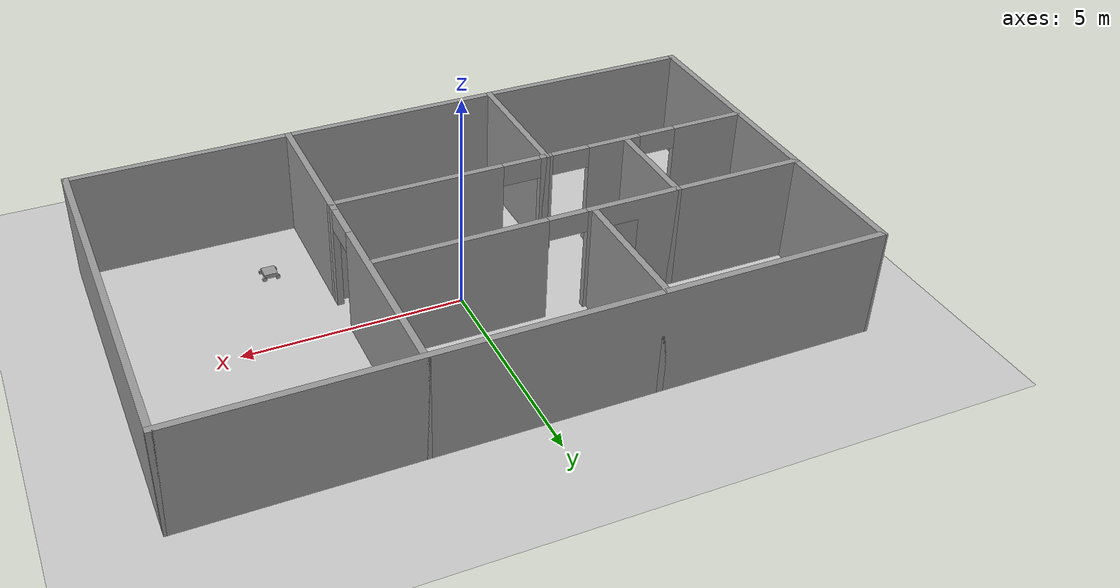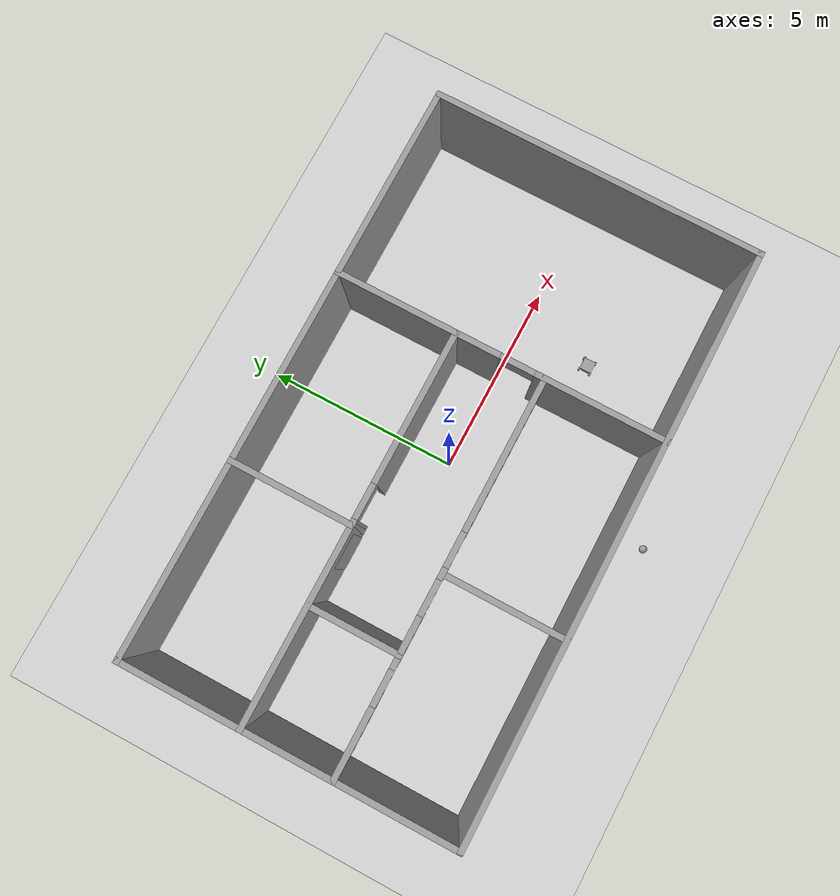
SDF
<sdf version="1.7">
 <world name="default">
  <plugin name="hello" filename="libhello.so"/>
  <light name="sun" type="directional">
   <pose>0 0 10 0 -0 0</pose>
   <diffuse>0.8 0.8 0.8 1</diffuse>
   <specular>0.2 0.2 0.2 1</specular>
   <attenuation>
    <range>1000</range>
    <constant>0.9</constant>
    <linear>0.01</linear>
    <quadratic>0.001</quadratic>
   </attenuation>
   <direction>-0.5 0.1 -0.9</direction>
   <spot><inner_angle>0</inner_angle><outer_angle>0</outer_angle><falloff>0</falloff></spot>
  </light>
  <model name="ground_plane">
   <static>1</static>
   <link name="link">
    <collision name="collision">
     <geometry><plane><normal>0 0 1</normal><size>100 100</size></plane></geometry>
     <surface><friction><ode><mu>100</mu><mu2>50</mu2></ode></friction></surface>
    </collision>
    <visual name="visual">
     <cast_shadows>0</cast_shadows>
     <geometry><plane><normal>0 0 1</normal><size>100 100</size></plane></geometry>
     <material>
      <script><uri>file://media/materials/scripts/gazebo.material</uri><name>Gazebo/Grey</name></script>
     </material>
    </visual>
   </link>
  </model>
  <gravity>0 0 -9.8</gravity>
  <magnetic_field>6e-06 2.3e-05 -4.2e-05</magnetic_field>
  <atmosphere type="adiabatic"/>
  <physics name="default_physics" default="0" type="ode">
   <max_step_size>0.001</max_step_size>
   <real_time_factor>1</real_time_factor>
   <real_time_update_rate>1000</real_time_update_rate>
  </physics>
  <scene><ambient>0.4 0.4 0.4 1</ambient><background>0.7 0.7 0.7 1</background><shadows>1</shadows></scene>
  <spherical_coordinates>
   <surface_model>EARTH_WGS84</surface_model>
   <latitude_deg>0</latitude_deg>
   <longitude_deg>0</longitude_deg>
   <elevation>0</elevation>
   <heading_deg>0</heading_deg>
  </spherical_coordinates>
  <model name="myworld">
   <link name="Door_0">
    <collision name="Door_0_Collision">
     <geometry><box><size>0.9 0.17 2</size></box></geometry>
     <pose>0 0 1 0 -0 0</pose>
    </collision>
    <visual name="Door_0_Visual">
     <pose>0 0 1 0 -0 0</pose>
     <geometry><box><size>0.9 0.17 2</size></box></geometry>
     <material>
      <script><uri>file://media/materials/scripts/gazebo.material</uri><name>Gazebo/Grey</name></script>
     </material>
    </visual>
    <pose>-3.1 1.15 0 0 -0 0</pose>
   </link>
   <link name="Wall_0">
    <collision name="Wall_0_Collision">
     <geometry><box><size>15.15 0.15 2.5</size></box></geometry>
     <pose>0 0 1.25 0 -0 0</pose>
    </collision>
    <visual name="Wall_0_Visual">
     <pose>0 0 1.25 0 -0 0</pose>
     <geometry><box><size>15.15 0.15 2.5</size></box></geometry>
     <material>
      <script><uri>file://media/materials/scripts/gazebo.material</uri><name>Gazebo/Grey</name></script>
      <ambient>1 1 1 1</ambient>
     </material>
     <meta><layer>0</layer></meta>
    </visual>
    <pose>0 4.25 0 0 -0 0</pose>
   </link>
   <link name="Wall_12">
    <pose>-2.5 -1.15 0 0 -0 0</pose>
    <visual name="Wall_12_Visual_0">
     <pose>-4.1625 0 1.25 0 -0 0</pose>
     <geometry><box><size>1.825 0.15 2.5</size></box></geometry>
     <material>
      <script><uri>file://media/materials/scripts/gazebo.material</uri><name>Gazebo/Grey</name></script>
      <ambient>1 1 1 1</ambient>
     </material>
     <meta><layer>0</layer></meta>
    </visual>
    <collision name="Wall_12_Collision_0">
     <geometry><box><size>1.825 0.15 2.5</size></box></geometry>
     <pose>-4.1625 0 1.25 0 -0 0</pose>
    </collision>
    <visual name="Wall_12_Visual_1">
     <pose>-1.7 0 1.25 0 -0 0</pose>
     <geometry><box><size>1.3 0.15 2.5</size></box></geometry>
     <material>
      <script><uri>file://media/materials/scripts/gazebo.material</uri><name>Gazebo/Grey</name></script>
      <ambient>1 1 1 1</ambient>
     </material>
     <meta><layer>0</layer></meta>
    </visual>
    <collision name="Wall_12_Collision_1">
     <geometry><box><size>1.3 0.15 2.5</size></box></geometry>
     <pose>-1.7 0 1.25 0 -0 0</pose>
    </collision>
    <visual name="Wall_12_Visual_2">
     <pose>0 0 1.25 0 -0 0</pose>
     <geometry><box><size>0.3 0.15 2.5</size></box></geometry>
     <material>
      <script><uri>file://media/materials/scripts/gazebo.material</uri><name>Gazebo/Grey</name></script>
      <ambient>1 1 1 1</ambient>
     </material>
     <meta><layer>0</layer></meta>
    </visual>
    <collision name="Wall_12_Collision_2">
     <geometry><box><size>0.3 0.15 2.5</size></box></geometry>
     <pose>0 0 1.25 0 -0 0</pose>
    </collision>
    <visual name="Wall_12_Visual_3">
     <pose>3.0625 0 1.25 0 -0 0</pose>
     <geometry><box><size>4.025 0.15 2.5</size></box></geometry>
     <material>
      <script><uri>file://media/materials/scripts/gazebo.material</uri><name>Gazebo/Grey</name></script>
      <ambient>1 1 1 1</ambient>
     </material>
     <meta><layer>0</layer></meta>
    </visual>
    <collision name="Wall_12_Collision_3">
     <geometry><box><size>4.025 0.15 2.5</size></box></geometry>
     <pose>3.0625 0 1.25 0 -0 0</pose>
    </collision>
    <visual name="Wall_12_Visual_4">
     <pose>-2.8 0 2.25 0 -0 0</pose>
     <geometry><box><size>0.9 0.15 0.5</size></box></geometry>
     <material>
      <script><uri>file://media/materials/scripts/gazebo.material</uri><name>Gazebo/Grey</name></script>
      <ambient>1 1 1 1</ambient>
     </material>
     <meta><layer>0</layer></meta>
    </visual>
    <collision name="Wall_12_Collision_4">
     <geometry><box><size>0.9 0.15 0.5</size></box></geometry>
     <pose>-2.8 0 2.25 0 -0 0</pose>
    </collision>
    <visual name="Wall_12_Visual_5">
     <pose>-0.6 0 2.25 0 -0 0</pose>
     <geometry><box><size>0.9 0.15 0.5</size></box></geometry>
     <material>
      <script><uri>file://media/materials/scripts/gazebo.material</uri><name>Gazebo/Grey</name></script>
      <ambient>1 1 1 1</ambient>
     </material>
     <meta><layer>0</layer></meta>
    </visual>
    <collision name="Wall_12_Collision_5">
     <geometry><box><size>0.9 0.15 0.5</size></box></geometry>
     <pose>-0.6 0 2.25 0 -0 0</pose>
    </collision>
    <visual name="Wall_12_Visual_6">
     <pose>0.6 0 2.25 0 -0 0</pose>
     <geometry><box><size>0.9 0.15 0.5</size></box></geometry>
     <material>
      <script><uri>file://media/materials/scripts/gazebo.material</uri><name>Gazebo/Grey</name></script>
      <ambient>1 1 1 1</ambient>
     </material>
     <meta><layer>0</layer></meta>
    </visual>
    <collision name="Wall_12_Collision_6">
     <geometry><box><size>0.9 0.15 0.5</size></box></geometry>
     <pose>0.6 0 2.25 0 -0 0</pose>
    </collision>
   </link>
   <link name="Wall_17">
    <pose>2.5 0 0 0 0 -1.5708</pose>
    <visual name="Wall_17_Visual_0">
     <pose>-2.1631 0 1.25 0 -0 0</pose>
     <geometry><box><size>4.3238 0.15 2.5</size></box></geometry>
     <material>
      <script><uri>file://media/materials/scripts/gazebo.material</uri><name>Gazebo/Grey</name></script>
      <ambient>1 1 1 1</ambient>
     </material>
     <meta><layer>0</layer></meta>
    </visual>
    <collision name="Wall_17_Collision_0">
     <geometry><box><size>4.3238 0.15 2.5</size></box></geometry>
     <pose>-2.1631 0 1.25 0 -0 0</pose>
    </collision>
    <visual name="Wall_17_Visual_1">
     <pose>2.6119 0 1.25 0 -0 0</pose>
     <geometry><box><size>3.4262 0.15 2.5</size></box></geometry>
     <material>
      <script><uri>file://media/materials/scripts/gazebo.material</uri><name>Gazebo/Grey</name></script>
      <ambient>1 1 1 1</ambient>
     </material>
     <meta><layer>0</layer></meta>
    </visual>
    <collision name="Wall_17_Collision_1">
     <geometry><box><size>3.4262 0.15 2.5</size></box></geometry>
     <pose>2.6119 0 1.25 0 -0 0</pose>
    </collision>
    <visual name="Wall_17_Visual_2">
     <pose>0.448796 0 2.25 0 -0 0</pose>
     <geometry><box><size>0.9 0.15 0.5</size></box></geometry>
     <material>
      <script><uri>file://media/materials/scripts/gazebo.material</uri><name>Gazebo/Grey</name></script>
      <ambient>1 1 1 1</ambient>
     </material>
     <meta><layer>0</layer></meta>
    </visual>
    <collision name="Wall_17_Collision_2">
     <geometry><box><size>0.9 0.15 0.5</size></box></geometry>
     <pose>0.448796 0 2.25 0 -0 0</pose>
    </collision>
   </link>
   <link name="Wall_19">
    <collision name="Wall_19_Collision">
     <geometry><box><size>3.25 0.15 2.5</size></box></geometry>
     <pose>0 0 1.25 0 -0 0</pose>
    </collision>
    <visual name="Wall_19_Visual">
     <pose>0 0 1.25 0 -0 0</pose>
     <geometry><box><size>3.25 0.15 2.5</size></box></geometry>
     <material>
      <script><uri>file://media/materials/scripts/gazebo.material</uri><name>Gazebo/Grey</name></script>
      <ambient>1 1 1 1</ambient>
     </material>
     <meta><layer>0</layer></meta>
    </visual>
    <pose>-2.5 -2.7 0 0 0 -1.5708</pose>
   </link>
   <link name="Wall_2">
    <collision name="Wall_2_Collision">
     <geometry><box><size>8.65 0.15 2.5</size></box></geometry>
     <pose>0 0 1.25 0 -0 0</pose>
    </collision>
    <visual name="Wall_2_Visual">
     <pose>0 0 1.25 0 -0 0</pose>
     <geometry><box><size>8.65 0.15 2.5</size></box></geometry>
     <material>
      <script><uri>file://media/materials/scripts/gazebo.material</uri><name>Gazebo/Grey</name></script>
      <ambient>1 1 1 1</ambient>
     </material>
     <meta><layer>0</layer></meta>
    </visual>
    <pose>-7.5 0 0 0 0 -1.5708</pose>
   </link>
   <link name="Wall_21">
    <collision name="Wall_21_Collision">
     <geometry><box><size>2.45 0.15 2.5</size></box></geometry>
     <pose>0 0 1.25 0 -0 0</pose>
    </collision>
    <visual name="Wall_21_Visual">
     <pose>0 0 1.25 0 -0 0</pose>
     <geometry><box><size>2.45 0.15 2.5</size></box></geometry>
     <material>
      <script><uri>file://media/materials/scripts/gazebo.material</uri><name>Gazebo/Grey</name></script>
      <ambient>1 1 1 1</ambient>
     </material>
     <meta><layer>0</layer></meta>
    </visual>
    <pose>-4.5 0 0 0 0 -1.5708</pose>
   </link>
   <link name="Wall_3">
    <collision name="Wall_3_Collision">
     <geometry><box><size>15.15 0.15 2.5</size></box></geometry>
     <pose>0 0 1.25 0 -0 0</pose>
    </collision>
    <visual name="Wall_3_Visual">
     <pose>0 0 1.25 0 -0 0</pose>
     <geometry><box><size>15.15 0.15 2.5</size></box></geometry>
     <material>
      <script><uri>file://media/materials/scripts/gazebo.material</uri><name>Gazebo/Grey</name></script>
      <ambient>1 1 1 1</ambient>
     </material>
     <meta><layer>0</layer></meta>
    </visual>
    <pose>0 -4.25 0 0 -0 0</pose>
   </link>
   <link name="Wall_4">
    <collision name="Wall_4_Collision">
     <geometry><box><size>8.65 0.15 2.5</size></box></geometry>
     <pose>0 0 1.25 0 -0 0</pose>
    </collision>
    <visual name="Wall_4_Visual">
     <pose>0 0 1.25 0 -0 0</pose>
     <geometry><box><size>8.65 0.15 2.5</size></box></geometry>
     <material>
      <script><uri>file://media/materials/scripts/gazebo.material</uri><name>Gazebo/Grey</name></script>
      <ambient>1 1 1 1</ambient>
     </material>
     <meta><layer>0</layer></meta>
    </visual>
    <pose>7.5 0 0 0 -0 1.5708</pose>
   </link>
   <link name="Wall_6">
    <pose>-2.5 1.15 0 0 -0 0</pose>
    <visual name="Wall_6_Visual_0">
     <pose>-2.46039 0 1.25 0 -0 0</pose>
     <geometry><box><size>5.22922 0.15 2.5</size></box></geometry>
     <material>
      <script><uri>file://media/materials/scripts/gazebo.material</uri><name>Gazebo/Grey</name></script>
      <ambient>1 1 1 1</ambient>
     </material>
     <meta><layer>0</layer></meta>
    </visual>
    <collision name="Wall_6_Collision_0">
     <geometry><box><size>5.22922 0.15 2.5</size></box></geometry>
     <pose>-2.46039 0 1.25 0 -0 0</pose>
    </collision>
    <visual name="Wall_6_Visual_1">
     <pose>3.06461 0 1.25 0 -0 0</pose>
     <geometry><box><size>4.02078 0.15 2.5</size></box></geometry>
     <material>
      <script><uri>file://media/materials/scripts/gazebo.material</uri><name>Gazebo/Grey</name></script>
      <ambient>1 1 1 1</ambient>
     </material>
     <meta><layer>0</layer></meta>
    </visual>
    <collision name="Wall_6_Collision_1">
     <geometry><box><size>4.02078 0.15 2.5</size></box></geometry>
     <pose>3.06461 0 1.25 0 -0 0</pose>
    </collision>
    <visual name="Wall_6_Visual_2">
     <pose>0.604225 0 2.25 0 -0 0</pose>
     <geometry><box><size>0.9 0.15 0.5</size></box></geometry>
     <material>
      <script><uri>file://media/materials/scripts/gazebo.material</uri><name>Gazebo/Grey</name></script>
      <ambient>1 1 1 1</ambient>
     </material>
     <meta><layer>0</layer></meta>
    </visual>
    <collision name="Wall_6_Collision_2">
     <geometry><box><size>0.9 0.15 0.5</size></box></geometry>
     <pose>0.604225 0 2.25 0 -0 0</pose>
    </collision>
   </link>
   <link name="Wall_9">
    <collision name="Wall_9_Collision">
     <geometry><box><size>3.25 0.15 2.5</size></box></geometry>
     <pose>0 0 1.25 0 -0 0</pose>
    </collision>
    <visual name="Wall_9_Visual">
     <pose>0 0 1.25 0 -0 0</pose>
     <geometry><box><size>3.25 0.15 2.5</size></box></geometry>
     <material>
      <script><uri>file://media/materials/scripts/gazebo.material</uri><name>Gazebo/Grey</name></script>
      <ambient>1 1 1 1</ambient>
     </material>
     <meta><layer>0</layer></meta>
    </visual>
    <pose>-2.5 2.7 0 0 0 -1.5708</pose>
   </link>
   <static>1</static>
  </model>
  <model name="myrobot_0">
   <link name="link_0">
    <pose>0 0 0.04 0 -0 0</pose>
    <inertial>
     <mass>1</mass>
     <inertia>
      <ixx>0.166667</ixx>
      <ixy>0</ixy>
      <ixz>0</ixz>
      <iyy>0.166667</iyy>
      <iyz>0</iyz>
      <izz>0.166667</izz>
     </inertia>
    </inertial>
    <visual name="visual">
     <geometry><box><size>0.3 0.3 0.1</size></box></geometry>
     <material>
      <lighting>1</lighting>
      <script><uri>file://media/materials/scripts/gazebo.material</uri><name>Gazebo/Grey</name></script>
      <ambient>0.3 0.3 0.3 1</ambient>
      <diffuse>0.7 0.7 0.7 1</diffuse>
      <specular>0.01 0.01 0.01 1</specular>
      <emissive>0 0 0 1</emissive>
      <shader type="vertex"><normal_map>__default__</normal_map></shader>
     </material>
    </visual>
    <collision name="collision">
     <geometry><box><size>1 1 1</size></box></geometry>
     <surface>
      <friction>
       <ode><mu>1</mu><mu2>1</mu2><fdir1>0 0 0</fdir1><slip1>0</slip1><slip2>0</slip2></ode>
       <torsional>
        <coefficient>1</coefficient>
        <patch_radius>0</patch_radius>
        <surface_radius>0</surface_radius>
        <use_patch_radius>1</use_patch_radius>
        <ode><slip>0</slip></ode>
       </torsional>
      </friction>
      <bounce><restitution_coefficient>0</restitution_coefficient><threshold>1e+06</threshold></bounce>
      <contact>
       <collide_without_contact>0</collide_without_contact>
       <collide_without_contact_bitmask>1</collide_without_contact_bitmask>
       <collide_bitmask>1</collide_bitmask>
       <ode>
        <soft_cfm>0</soft_cfm>
        <soft_erp>0.2</soft_erp>
        <kp>1e+13</kp>
        <kd>1</kd>
        <max_vel>0.01</max_vel>
        <min_depth>0</min_depth>
       </ode>
       <bullet>
        <split_impulse>1</split_impulse>
        <split_impulse_penetration_threshold>-0.01</split_impulse_penetration_threshold>
        <soft_cfm>0</soft_cfm>
        <soft_erp>0.2</soft_erp>
        <kp>1e+13</kp>
        <kd>1</kd>
       </bullet>
      </contact>
     </surface>
    </collision>
   </link>
   <link name="link_1">
    <pose>0.15 -0.15 -0.01 0 -0 0</pose>
    <inertial>
     <mass>1</mass>
     <inertia><ixx>0.145833</ixx><ixy>0</ixy><ixz>0</ixz><iyy>0.145833</iyy><iyz>0</iyz><izz>0.125</izz></inertia>
    </inertial>
    <visual name="visual">
     <pose>0 0 0 1.5708 -0 0</pose>
     <geometry><cylinder><radius>0.05</radius><length>0.05</length></cylinder></geometry>
     <material>
      <lighting>1</lighting>
      <script><uri>file://media/materials/scripts/gazebo.material</uri><name>Gazebo/Grey</name></script>
      <ambient>0.3 0.3 0.3 1</ambient>
      <diffuse>0.7 0.7 0.7 1</diffuse>
      <specular>0.01 0.01 0.01 1</specular>
      <emissive>0 0 0 1</emissive>
      <shader type="vertex"><normal_map>__default__</normal_map></shader>
     </material>
    </visual>
    <collision name="collision">
     <geometry><cylinder><radius>0.5</radius><length>1</length></cylinder></geometry>
     <surface>
      <friction>
       <ode><mu>1</mu><mu2>1</mu2><fdir1>0 0 0</fdir1><slip1>0</slip1><slip2>0</slip2></ode>
       <torsional>
        <coefficient>1</coefficient>
        <patch_radius>0</patch_radius>
        <surface_radius>0</surface_radius>
        <use_patch_radius>1</use_patch_radius>
        <ode><slip>0</slip></ode>
       </torsional>
      </friction>
      <bounce><restitution_coefficient>0</restitution_coefficient><threshold>1e+06</threshold></bounce>
      <contact>
       <collide_without_contact>0</collide_without_contact>
       <collide_without_contact_bitmask>1</collide_without_contact_bitmask>
       <collide_bitmask>1</collide_bitmask>
       <ode>
        <soft_cfm>0</soft_cfm>
        <soft_erp>0.2</soft_erp>
        <kp>1e+13</kp>
        <kd>1</kd>
        <max_vel>0.01</max_vel>
        <min_depth>0</min_depth>
       </ode>
       <bullet>
        <split_impulse>1</split_impulse>
        <split_impulse_penetration_threshold>-0.01</split_impulse_penetration_threshold>
        <soft_cfm>0</soft_cfm>
        <soft_erp>0.2</soft_erp>
        <kp>1e+13</kp>
        <kd>1</kd>
       </bullet>
      </contact>
     </surface>
    </collision>
   </link>
   <link name="link_1_clone">
    <pose>0.15 0.15 -0.01 0 -0 0</pose>
    <inertial>
     <mass>1</mass>
     <inertia><ixx>0.145833</ixx><ixy>0</ixy><ixz>0</ixz><iyy>0.145833</iyy><iyz>0</iyz><izz>0.125</izz></inertia>
    </inertial>
    <visual name="visual">
     <pose>0 0 0 1.5708 -0 0</pose>
     <geometry><cylinder><radius>0.05</radius><length>0.05</length></cylinder></geometry>
     <material>
      <lighting>1</lighting>
      <script><uri>file://media/materials/scripts/gazebo.material</uri><name>Gazebo/Grey</name></script>
      <ambient>0.3 0.3 0.3 1</ambient>
      <diffuse>0.7 0.7 0.7 1</diffuse>
      <specular>0.01 0.01 0.01 1</specular>
      <emissive>0 0 0 1</emissive>
      <shader type="vertex"><normal_map>__default__</normal_map></shader>
     </material>
    </visual>
    <collision name="collision">
     <geometry><cylinder><radius>0.5</radius><length>1</length></cylinder></geometry>
     <surface>
      <friction>
       <ode><mu>1</mu><mu2>1</mu2><fdir1>0 0 0</fdir1><slip1>0</slip1><slip2>0</slip2></ode>
       <torsional>
        <coefficient>1</coefficient>
        <patch_radius>0</patch_radius>
        <surface_radius>0</surface_radius>
        <use_patch_radius>1</use_patch_radius>
        <ode><slip>0</slip></ode>
       </torsional>
      </friction>
      <bounce><restitution_coefficient>0</restitution_coefficient><threshold>1e+06</threshold></bounce>
      <contact>
       <collide_without_contact>0</collide_without_contact>
       <collide_without_contact_bitmask>1</collide_without_contact_bitmask>
       <collide_bitmask>1</collide_bitmask>
       <ode>
        <soft_cfm>0</soft_cfm>
        <soft_erp>0.2</soft_erp>
        <kp>1e+13</kp>
        <kd>1</kd>
        <max_vel>0.01</max_vel>
        <min_depth>0</min_depth>
       </ode>
       <bullet>
        <split_impulse>1</split_impulse>
        <split_impulse_penetration_threshold>-0.01</split_impulse_penetration_threshold>
        <soft_cfm>0</soft_cfm>
        <soft_erp>0.2</soft_erp>
        <kp>1e+13</kp>
        <kd>1</kd>
       </bullet>
      </contact>
     </surface>
    </collision>
   </link>
   <link name="link_1_clone_0">
    <pose>-0.15 0.15 -0.01 0 -0 0</pose>
    <inertial>
     <mass>1</mass>
     <inertia><ixx>0.145833</ixx><ixy>0</ixy><ixz>0</ixz><iyy>0.145833</iyy><iyz>0</iyz><izz>0.125</izz></inertia>
    </inertial>
    <visual name="visual">
     <pose>0 0 0 1.5708 -0 0</pose>
     <geometry><cylinder><radius>0.05</radius><length>0.05</length></cylinder></geometry>
     <material>
      <lighting>1</lighting>
      <script><uri>file://media/materials/scripts/gazebo.material</uri><name>Gazebo/Grey</name></script>
      <ambient>0.3 0.3 0.3 1</ambient>
      <diffuse>0.7 0.7 0.7 1</diffuse>
      <specular>0.01 0.01 0.01 1</specular>
      <emissive>0 0 0 1</emissive>
      <shader type="vertex"><normal_map>__default__</normal_map></shader>
     </material>
    </visual>
    <collision name="collision">
     <geometry><cylinder><radius>0.5</radius><length>1</length></cylinder></geometry>
     <surface>
      <friction>
       <ode><mu>1</mu><mu2>1</mu2><fdir1>0 0 0</fdir1><slip1>0</slip1><slip2>0</slip2></ode>
       <torsional>
        <coefficient>1</coefficient>
        <patch_radius>0</patch_radius>
        <surface_radius>0</surface_radius>
        <use_patch_radius>1</use_patch_radius>
        <ode><slip>0</slip></ode>
       </torsional>
      </friction>
      <bounce><restitution_coefficient>0</restitution_coefficient><threshold>1e+06</threshold></bounce>
      <contact>
       <collide_without_contact>0</collide_without_contact>
       <collide_without_contact_bitmask>1</collide_without_contact_bitmask>
       <collide_bitmask>1</collide_bitmask>
       <ode>
        <soft_cfm>0</soft_cfm>
        <soft_erp>0.2</soft_erp>
        <kp>1e+13</kp>
        <kd>1</kd>
        <max_vel>0.01</max_vel>
        <min_depth>0</min_depth>
       </ode>
       <bullet>
        <split_impulse>1</split_impulse>
        <split_impulse_penetration_threshold>-0.01</split_impulse_penetration_threshold>
        <soft_cfm>0</soft_cfm>
        <soft_erp>0.2</soft_erp>
        <kp>1e+13</kp>
        <kd>1</kd>
       </bullet>
      </contact>
     </surface>
    </collision>
   </link>
   <link name="link_1_clone_1">
    <pose>-0.15 -0.15 -0.01 0 -0 0</pose>
    <inertial>
     <mass>1</mass>
     <inertia><ixx>0.145833</ixx><ixy>0</ixy><ixz>0</ixz><iyy>0.145833</iyy><iyz>0</iyz><izz>0.125</izz></inertia>
    </inertial>
    <visual name="visual">
     <pose>0 0 0 1.5708 -0 0</pose>
     <geometry><cylinder><radius>0.05</radius><length>0.05</length></cylinder></geometry>
     <material>
      <lighting>1</lighting>
      <script><uri>file://media/materials/scripts/gazebo.material</uri><name>Gazebo/Grey</name></script>
      <ambient>0.3 0.3 0.3 1</ambient>
      <diffuse>0.7 0.7 0.7 1</diffuse>
      <specular>0.01 0.01 0.01 1</specular>
      <emissive>0 0 0 1</emissive>
      <shader type="vertex"><normal_map>__default__</normal_map></shader>
     </material>
    </visual>
    <collision name="collision">
     <geometry><cylinder><radius>0.5</radius><length>1</length></cylinder></geometry>
     <surface>
      <friction>
       <ode><mu>1</mu><mu2>1</mu2><fdir1>0 0 0</fdir1><slip1>0</slip1><slip2>0</slip2></ode>
       <torsional>
        <coefficient>1</coefficient>
        <patch_radius>0</patch_radius>
        <surface_radius>0</surface_radius>
        <use_patch_radius>1</use_patch_radius>
        <ode><slip>0</slip></ode>
       </torsional>
      </friction>
      <bounce><restitution_coefficient>0</restitution_coefficient><threshold>1e+06</threshold></bounce>
      <contact>
       <collide_without_contact>0</collide_without_contact>
       <collide_without_contact_bitmask>1</collide_without_contact_bitmask>
       <collide_bitmask>1</collide_bitmask>
       <ode>
        <soft_cfm>0</soft_cfm>
        <soft_erp>0.2</soft_erp>
        <kp>1e+13</kp>
        <kd>1</kd>
        <max_vel>0.01</max_vel>
        <min_depth>0</min_depth>
       </ode>
       <bullet>
        <split_impulse>1</split_impulse>
        <split_impulse_penetration_threshold>-0.01</split_impulse_penetration_threshold>
        <soft_cfm>0</soft_cfm>
        <soft_erp>0.2</soft_erp>
        <kp>1e+13</kp>
        <kd>1</kd>
       </bullet>
      </contact>
     </surface>
    </collision>
   </link>
   <joint name="link_0_JOINT_0" type="revolute">
    <parent>link_0</parent>
    <child>link_1_clone</child>
    <axis>
     <xyz>0 1 0</xyz>
     <limit>
      <lower>-1.79769e+308</lower>
      <upper>1.79769e+308</upper>
      <effort>-1</effort>
      <velocity>-1</velocity>
     </limit>
     <dynamics>
      <spring_reference>0</spring_reference>
      <spring_stiffness>0</spring_stiffness>
      <damping>0</damping>
     </dynamics>
    </axis>
    <physics>
     <ode><limit><cfm>0</cfm><erp>0.2</erp></limit><suspension><cfm>0</cfm><erp>0.2</erp></suspension></ode>
    </physics>
   </joint>
   <joint name="link_0_JOINT_1" type="revolute">
    <parent>link_0</parent>
    <child>link_1</child>
    <axis>
     <xyz>0 1 0</xyz>
     <limit>
      <lower>-1.79769e+308</lower>
      <upper>1.79769e+308</upper>
      <effort>-1</effort>
      <velocity>-1</velocity>
     </limit>
     <dynamics>
      <spring_reference>0</spring_reference>
      <spring_stiffness>0</spring_stiffness>
      <damping>0</damping>
     </dynamics>
    </axis>
    <physics>
     <ode><limit><cfm>0</cfm><erp>0.2</erp></limit><suspension><cfm>0</cfm><erp>0.2</erp></suspension></ode>
    </physics>
   </joint>
   <joint name="link_0_JOINT_2" type="revolute">
    <parent>link_0</parent>
    <child>link_1_clone_0</child>
    <axis>
     <xyz>0 1 0</xyz>
     <limit>
      <lower>-1.79769e+308</lower>
      <upper>1.79769e+308</upper>
      <effort>-1</effort>
      <velocity>-1</velocity>
     </limit>
     <dynamics>
      <spring_reference>0</spring_reference>
      <spring_stiffness>0</spring_stiffness>
      <damping>0</damping>
     </dynamics>
    </axis>
    <physics>
     <ode><limit><cfm>0</cfm><erp>0.2</erp></limit><suspension><cfm>0</cfm><erp>0.2</erp></suspension></ode>
    </physics>
   </joint>
   <joint name="link_0_JOINT_3" type="revolute">
    <parent>link_0</parent>
    <child>link_1_clone_1</child>
    <axis>
     <xyz>0 1 0</xyz>
     <limit>
      <lower>-1.79769e+308</lower>
      <upper>1.79769e+308</upper>
      <effort>-1</effort>
      <velocity>-1</velocity>
     </limit>
     <dynamics>
      <spring_reference>0</spring_reference>
      <spring_stiffness>0</spring_stiffness>
      <damping>0</damping>
     </dynamics>
    </axis>
    <physics>
     <ode><limit><cfm>0</cfm><erp>0.2</erp></limit><suspension><cfm>0</cfm><erp>0.2</erp></suspension></ode>
    </physics>
   </joint>
   <static>0</static>
   <pose>3.78461 -1.9264 0.509998 0 1.2e-05 -0.002935</pose>
  </model>
  <model name="my_ball">
   <link name="link">
    <inertial>
     <mass>1</mass>
     <inertia><ixx>0.1</ixx><ixy>0</ixy><ixz>0</ixz><iyy>0.1</iyy><iyz>0</iyz><izz>0.1</izz></inertia>
    </inertial>
    <visual name="visual">
     <geometry><sphere><radius>0.1</radius></sphere></geometry>
     <material>
      <script><name>Gazebo/Grey</name><uri>file://media/materials/scripts/gazebo.material</uri></script>
      <ambient>1 1 1 1</ambient>
      <diffuse>1 1 1 1</diffuse>
      <specular>1 1 1 1</specular>
      <emissive>1 1 1 1</emissive>
      <shader type="vertex"><normal_map>__default__</normal_map></shader>
     </material>
    </visual>
    <collision name="collision">
     <geometry><sphere><radius>0.1</radius></sphere></geometry>
     <surface>
      <friction>
       <ode><mu>1</mu><mu2>1</mu2><fdir1>0 0 0</fdir1><slip1>0</slip1><slip2>0</slip2></ode>
       <torsional>
        <coefficient>1</coefficient>
        <patch_radius>0</patch_radius>
        <surface_radius>0</surface_radius>
        <use_patch_radius>1</use_patch_radius>
        <ode><slip>0</slip></ode>
       </torsional>
      </friction>
      <bounce><restitution_coefficient>0</restitution_coefficient><threshold>1e+06</threshold></bounce>
      <contact>
       <collide_without_contact>0</collide_without_contact>
       <collide_without_contact_bitmask>1</collide_without_contact_bitmask>
       <collide_bitmask>1</collide_bitmask>
       <ode>
        <soft_cfm>0</soft_cfm>
        <soft_erp>0.2</soft_erp>
        <kp>1e+13</kp>
        <kd>1</kd>
        <max_vel>0.01</max_vel>
        <min_depth>0</min_depth>
       </ode>
       <bullet>
        <split_impulse>1</split_impulse>
        <split_impulse_penetration_threshold>-0.01</split_impulse_penetration_threshold>
        <soft_cfm>0</soft_cfm>
        <soft_erp>0.2</soft_erp>
        <kp>1e+13</kp>
        <kd>1</kd>
       </bullet>
      </contact>
     </surface>
    </collision>
   </link>
   <static>0</static>
   <pose>0.379616 -5.27304 0.1 0 -0 0</pose>
  </model>
 </world>
</sdf>
